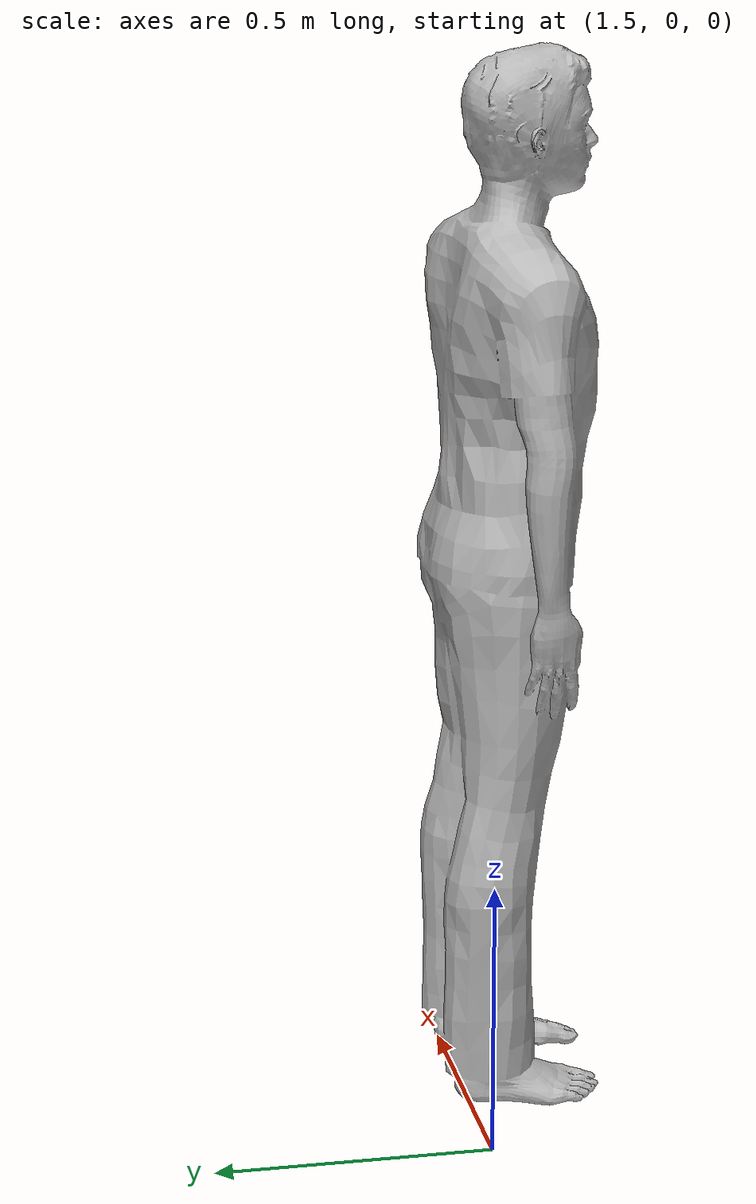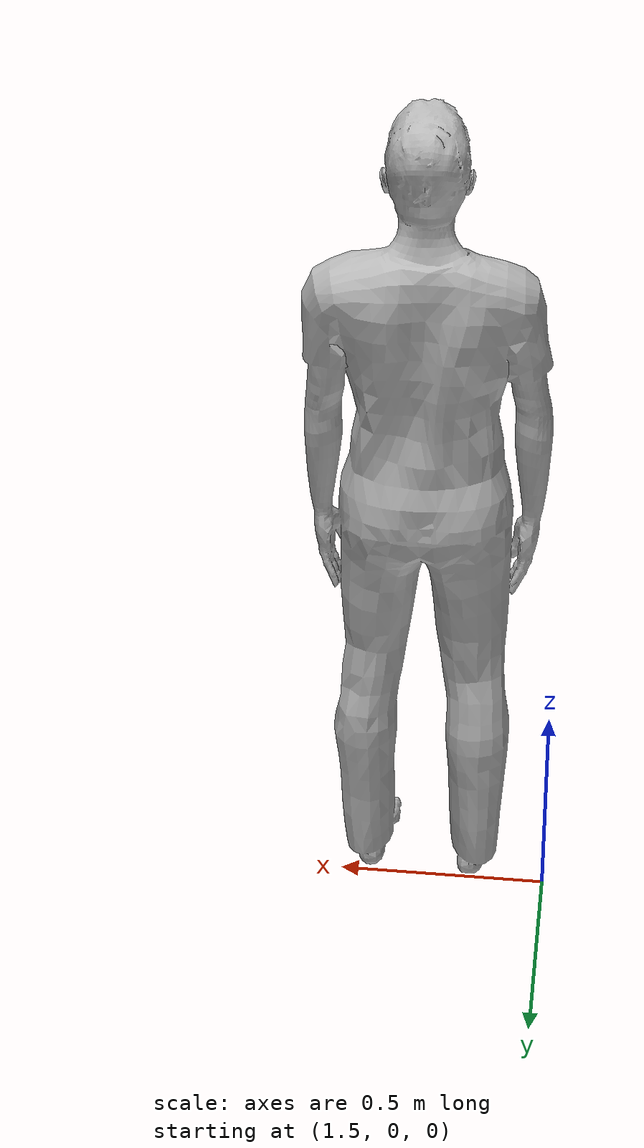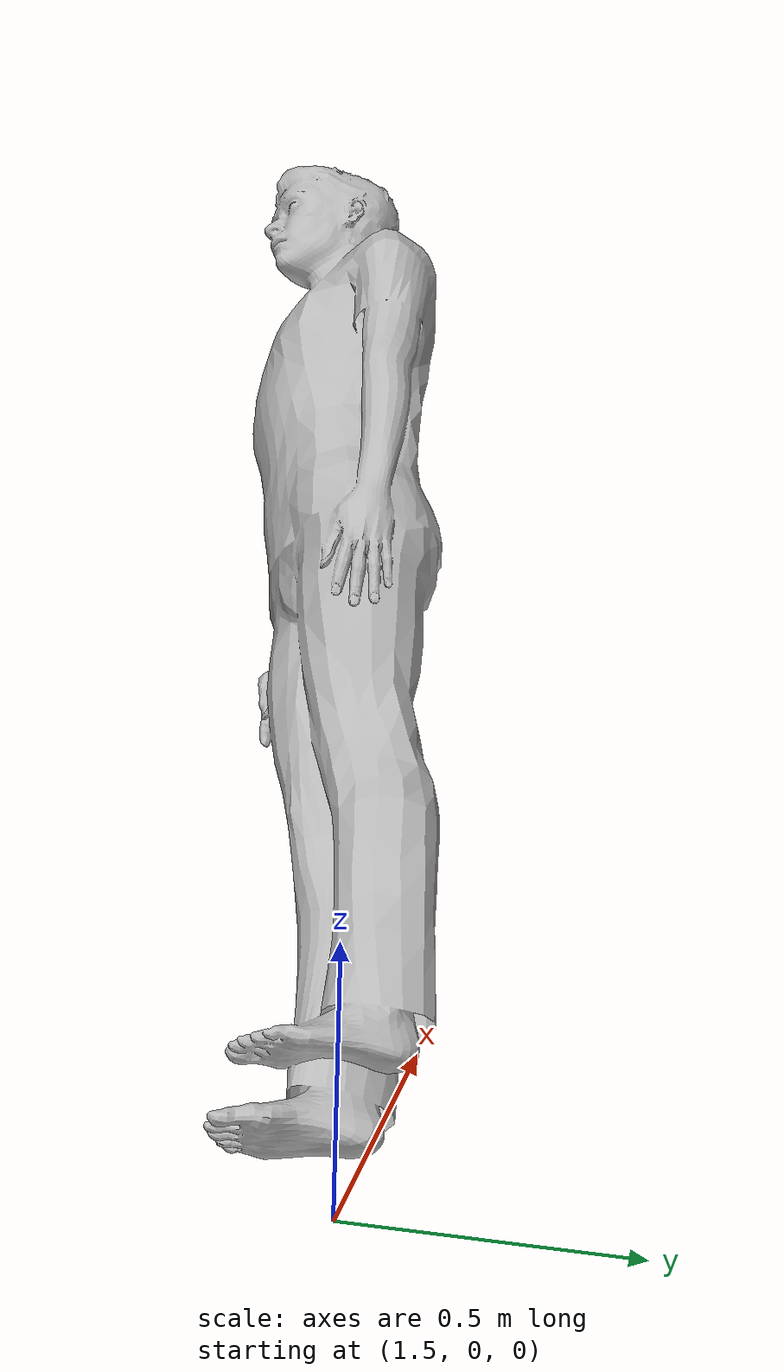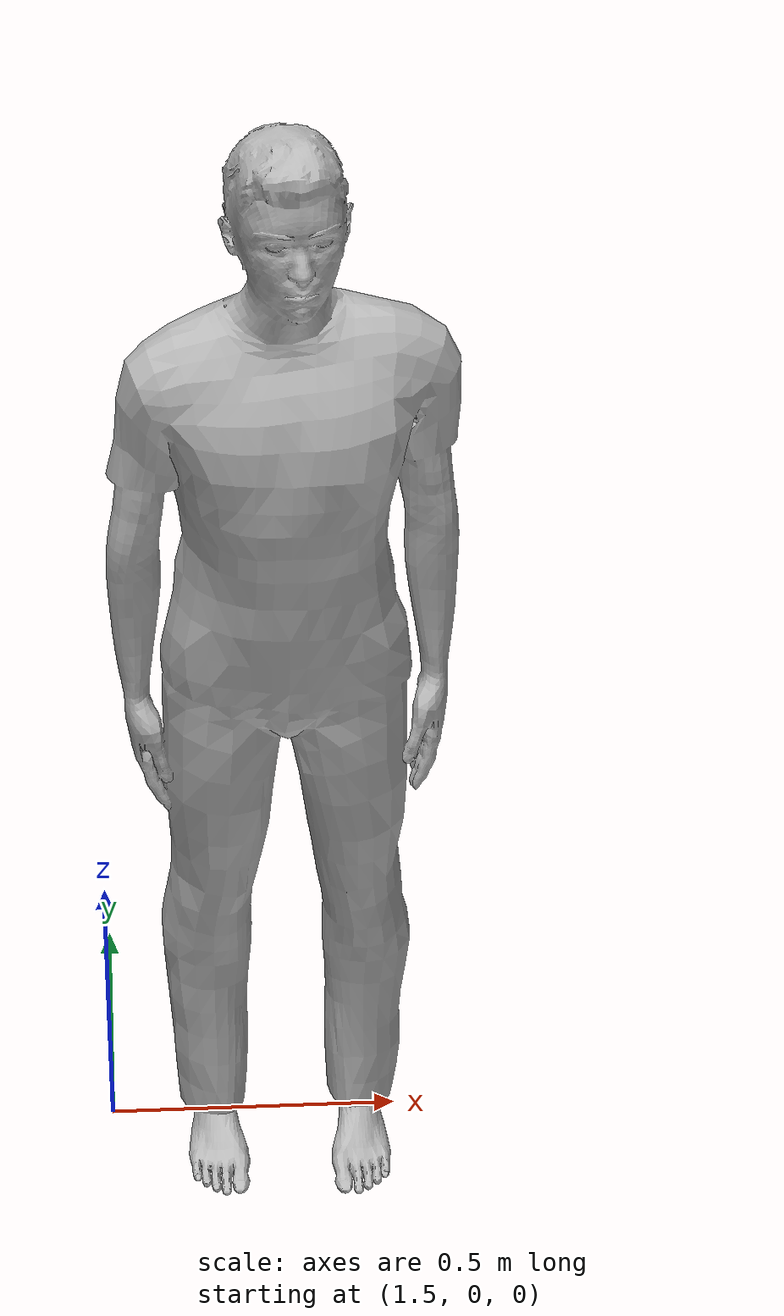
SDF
<?xml version="1.0" ?>
<sdf version="1.5">
  <model name="person_standing">
    <link name="link">
      <inertial>
        <pose>1.8 -0.1 0.95 0 0 0</pose>
        <mass>80.0</mass>
        <inertia>
          <ixx>24.88</ixx>
          <ixy>0</ixy>
          <ixz>0</ixz>
          <iyy>25.73</iyy>
          <iyz>0</iyz>
          <izz>2.48</izz>
        </inertia>
      </inertial>

      <collision name="bottom">
        <pose>1.8 -0.1 0.01 0 0 0</pose>
        <geometry>
          <box>
            <size>0.5 0.35 0.02</size>
          </box>
        </geometry>
      </collision>

      <collision name="person">
        <pose>1.8 0 0.02 0.04 0 0</pose>
        <geometry>
          <mesh>
            <uri>model://person_standing/meshes/standing.dae</uri>
          </mesh>
        </geometry>
      </collision>

      <visual name="visual">
        <pose>1.8 0 0.02 0.04 0 0</pose>
        <geometry>
          <mesh>
            <uri>model://person_standing/meshes/standing.dae</uri>
          </mesh>
        </geometry>
      </visual>
    </link>
  </model>
</sdf>
